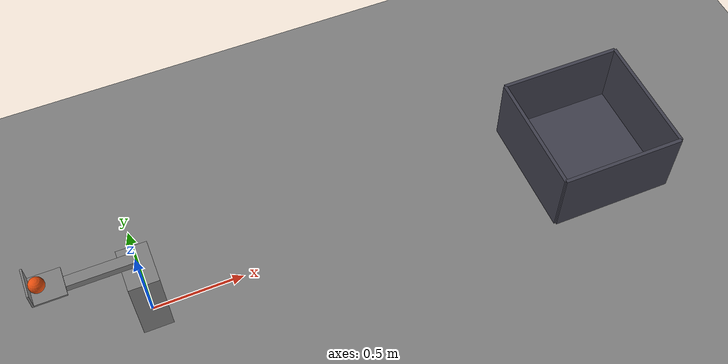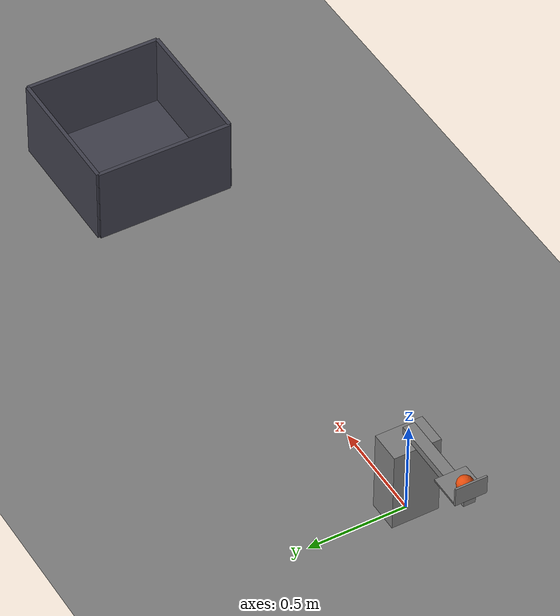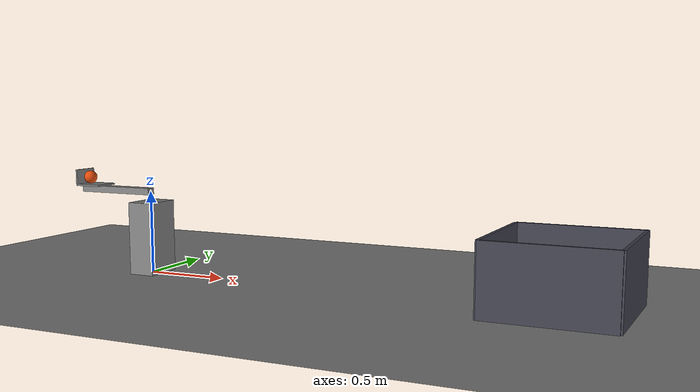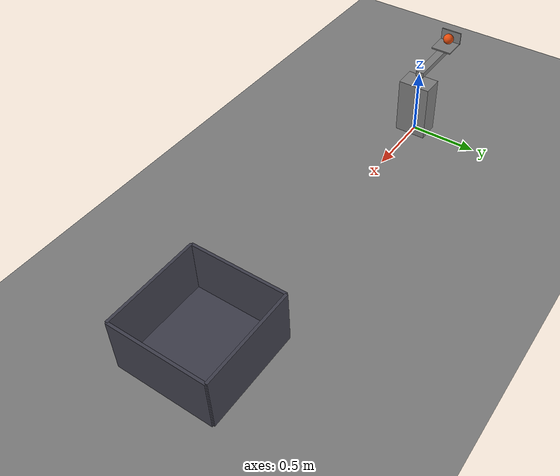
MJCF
<mujoco model="catapult_into_a_bucket">
  <compiler angle="radian"/>
  <option timestep="0.002"/>
  <worldbody>
    <geom name="floor" type="plane" size="8 8 0.1" friction="0.8 0.005 0.002"/>
    <geom name="catapult_stand" type="box" pos="0 0 0.22" size="0.08 0.12 0.22" friction="0.8 0.005 0.0001"/>
    <body name="catapult" pos="0 0 0.5">
      <joint name="catapult_hinge" type="hinge" pos="0 0 0" axis="0 1 0" limited="true" range="0 0.628319" stiffness="4.85" springref="1.5708" damping="0.02" armature="0.01"/>
      <geom name="catapult_arm" type="box" pos="-0.25 0 0" size="0.25 0.03 0.02" mass="0.3" friction="0.8 0.005 0.0001"/>
      <geom name="catapult_scoop_base" type="box" pos="-0.42 0 0.025" size="0.08 0.08 0.005" mass="0.02" friction="0.8 0.005 0.0001"/>
      <geom name="catapult_scoop_back" type="box" pos="-0.505 0 0.07" size="0.005 0.08 0.05" mass="0.01" friction="0.8 0.005 0.0001"/>
    </body>
    <body name="ball" pos="-0.46 0 0.57">
      <freejoint/>
      <geom name="ball" type="sphere" pos="0 0 0" size="0.04" mass="0.06" condim="6" friction="0.8 0.01 0.004" rgba="0.9 0.3 0.05 1"/>
    </body>
    <body name="bucket">
      <geom name="bucket_base" type="box" pos="2.54 0 0.01" size="0.35 0.35 0.01" friction="0.9 0.005 0.0001" solref="0.01 1" rgba="0.25 0.25 0.3 1"/>
      <geom name="bucket_near_wall" type="box" pos="2.19 0 0.2" size="0.01 0.35 0.2" friction="0.9 0.005 0.0001" solref="0.01 1" rgba="0.25 0.25 0.3 1"/>
      <geom name="bucket_far_wall" type="box" pos="2.89 0 0.2" size="0.01 0.35 0.2" friction="0.9 0.005 0.0001" solref="0.01 1" rgba="0.25 0.25 0.3 1"/>
      <geom name="bucket_left_wall" type="box" pos="2.54 0.35 0.2" size="0.35 0.01 0.2" friction="0.9 0.005 0.0001" solref="0.01 1" rgba="0.25 0.25 0.3 1"/>
      <geom name="bucket_right_wall" type="box" pos="2.54 -0.35 0.2" size="0.35 0.01 0.2" friction="0.9 0.005 0.0001" solref="0.01 1" rgba="0.25 0.25 0.3 1"/>
    </body>
  </worldbody>
  <keyframe>
    <key name="start" qpos="0 -0.46 0 0.57 1 0 0 0" qvel="0 0 0 0 0 0 0"/>
  </keyframe>
</mujoco>
